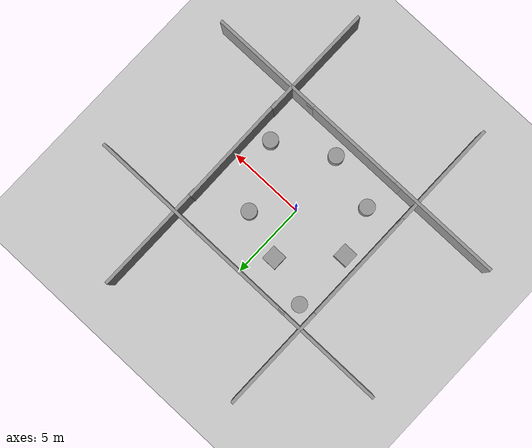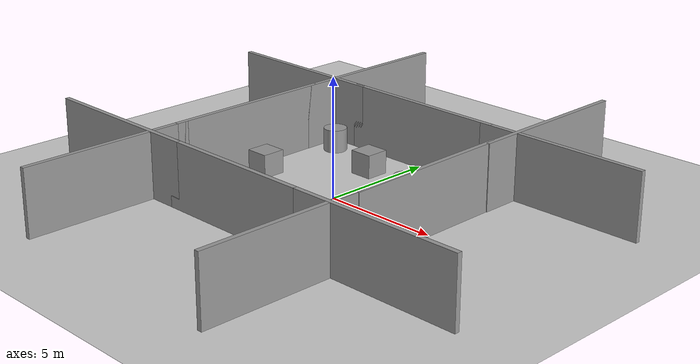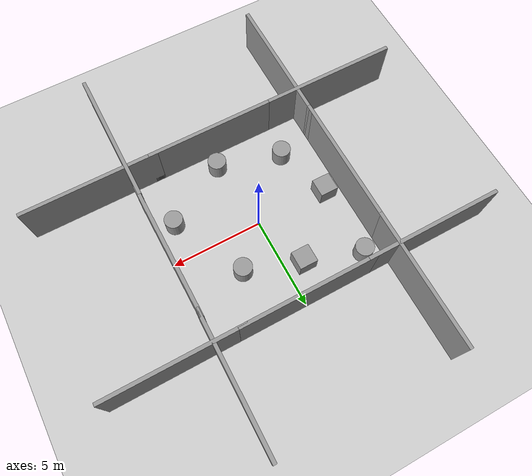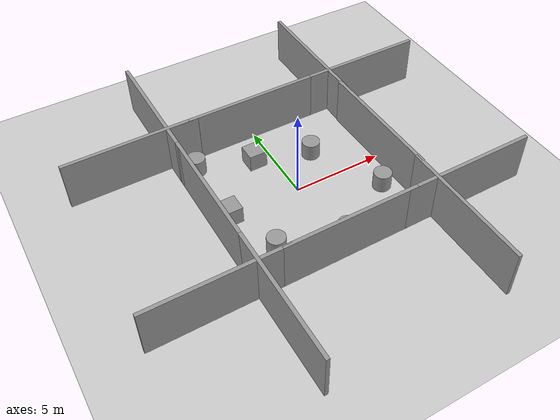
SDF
<sdf version="1.4">
 <world name="default">
  <light name="sun" type="directional">
   <pose>0 0 10 0 -0 0</pose>
   <diffuse>0.8 0.8 0.8 1</diffuse>
   <specular>0.2 0.2 0.2 1</specular>
   <attenuation>
    <range>1000</range>
    <constant>0.9</constant>
    <linear>0.01</linear>
    <quadratic>0.001</quadratic>
   </attenuation>
   <direction>-0.5 0.1 -0.9</direction>
  </light>
  <model name="ground_plane">
   <static>1</static>
   <link name="link">
    <collision name="collision">
     <geometry><plane><normal>0 0 1</normal><size>100 100</size></plane></geometry>
     <surface><friction><ode><mu>100</mu><mu2>50</mu2></ode></friction></surface>
    </collision>
    <visual name="visual">
     <cast_shadows>0</cast_shadows>
     <geometry><plane><normal>0 0 1</normal><size>100 100</size></plane></geometry>
     <material>
      <script><uri>file://media/materials/scripts/gazebo.material</uri><name>Gazebo/Grey</name></script>
     </material>
    </visual>
    <velocity_decay><linear>0</linear><angular>0</angular></velocity_decay>
   </link>
  </model>
  <physics type="ode">
   <max_step_size>0.001</max_step_size>
   <real_time_factor>1</real_time_factor>
   <real_time_update_rate>1000</real_time_update_rate>
   <gravity>0 0 -9.8</gravity>
  </physics>
  <scene><ambient>0.4 0.4 0.4 1</ambient><background>0.7 0.7 0.7 1</background><shadows>1</shadows></scene>
  <spherical_coordinates>
   <surface_model>EARTH_WGS84</surface_model>
   <latitude_deg>0</latitude_deg>
   <longitude_deg>0</longitude_deg>
   <elevation>0</elevation>
   <heading_deg>0</heading_deg>
  </spherical_coordinates>
  <model name="grey_wall">
   <static>1</static>
   <link name="link">
    <pose>0 0 1.4 0 -0 0</pose>
    <collision name="collision"><geometry><box><size>7.5 0.2 2.8</size></box></geometry></collision>
    <visual name="visual">
     <cast_shadows>0</cast_shadows>
     <geometry><box><size>7.5 0.2 2.8</size></box></geometry>
     <material>
      <script>
       <uri>model://grey_wall/materials/scripts</uri>
       <uri>model://grey_wall/materials/textures</uri>
       <name>vrc/grey_wall</name>
      </script>
     </material>
    </visual>
    <velocity_decay><linear>0</linear><angular>0</angular></velocity_decay>
   </link>
   <pose>0 5 0 0 -0 0</pose>
  </model>
  <model name="grey_wall_0">
   <static>1</static>
   <link name="link">
    <pose>0 0 1.4 0 -0 0</pose>
    <collision name="collision"><geometry><box><size>7.5 0.2 2.8</size></box></geometry></collision>
    <visual name="visual">
     <cast_shadows>0</cast_shadows>
     <geometry><box><size>7.5 0.2 2.8</size></box></geometry>
     <material>
      <script>
       <uri>model://grey_wall/materials/scripts</uri>
       <uri>model://grey_wall/materials/textures</uri>
       <name>vrc/grey_wall</name>
      </script>
     </material>
    </visual>
    <velocity_decay><linear>0</linear><angular>0</angular></velocity_decay>
   </link>
   <pose>0 -5 0 0 -0 0</pose>
  </model>
  <model name="grey_wall_2">
   <static>1</static>
   <link name="link">
    <pose>0 0 1.4 0 -0 0</pose>
    <collision name="collision"><geometry><box><size>7.5 0.2 2.8</size></box></geometry></collision>
    <visual name="visual">
     <cast_shadows>0</cast_shadows>
     <geometry><box><size>7.5 0.2 2.8</size></box></geometry>
     <material>
      <script>
       <uri>model://grey_wall/materials/scripts</uri>
       <uri>model://grey_wall/materials/textures</uri>
       <name>vrc/grey_wall</name>
      </script>
     </material>
    </visual>
    <velocity_decay><linear>0</linear><angular>0</angular></velocity_decay>
   </link>
   <pose>5 0 0 0 -0 1.58105</pose>
  </model>
  <model name="grey_wall_3">
   <static>1</static>
   <link name="link">
    <pose>0 0 1.4 0 -0 0</pose>
    <collision name="collision"><geometry><box><size>7.5 0.2 2.8</size></box></geometry></collision>
    <visual name="visual">
     <cast_shadows>0</cast_shadows>
     <geometry><box><size>7.5 0.2 2.8</size></box></geometry>
     <material>
      <script>
       <uri>model://grey_wall/materials/scripts</uri>
       <uri>model://grey_wall/materials/textures</uri>
       <name>vrc/grey_wall</name>
      </script>
     </material>
    </visual>
    <velocity_decay><linear>0</linear><angular>0</angular></velocity_decay>
   </link>
   <pose>-5 0 0 0 -0 1.5708</pose>
  </model>
  <model name="grey_wall_4">
   <static>1</static>
   <link name="link">
    <pose>0 0 1.4 0 -0 0</pose>
    <collision name="collision"><geometry><box><size>7.5 0.2 2.8</size></box></geometry></collision>
    <visual name="visual">
     <cast_shadows>0</cast_shadows>
     <geometry><box><size>7.5 0.2 2.8</size></box></geometry>
     <material>
      <script>
       <uri>model://grey_wall/materials/scripts</uri>
       <uri>model://grey_wall/materials/textures</uri>
       <name>vrc/grey_wall</name>
      </script>
     </material>
    </visual>
    <velocity_decay><linear>0</linear><angular>0</angular></velocity_decay>
   </link>
   <pose>7 5 0 0 -0 0</pose>
  </model>
  <model name="grey_wall_5">
   <static>1</static>
   <link name="link">
    <pose>0 0 1.4 0 -0 0</pose>
    <collision name="collision"><geometry><box><size>7.5 0.2 2.8</size></box></geometry></collision>
    <visual name="visual">
     <cast_shadows>0</cast_shadows>
     <geometry><box><size>7.5 0.2 2.8</size></box></geometry>
     <material>
      <script>
       <uri>model://grey_wall/materials/scripts</uri>
       <uri>model://grey_wall/materials/textures</uri>
       <name>vrc/grey_wall</name>
      </script>
     </material>
    </visual>
    <velocity_decay><linear>0</linear><angular>0</angular></velocity_decay>
   </link>
   <pose>7 -5 0 0 -0 0</pose>
  </model>
  <model name="grey_wall_6">
   <static>1</static>
   <link name="link">
    <pose>0 0 1.4 0 -0 0</pose>
    <collision name="collision"><geometry><box><size>7.5 0.2 2.8</size></box></geometry></collision>
    <visual name="visual">
     <cast_shadows>0</cast_shadows>
     <geometry><box><size>7.5 0.2 2.8</size></box></geometry>
     <material>
      <script>
       <uri>model://grey_wall/materials/scripts</uri>
       <uri>model://grey_wall/materials/textures</uri>
       <name>vrc/grey_wall</name>
      </script>
     </material>
    </visual>
    <velocity_decay><linear>0</linear><angular>0</angular></velocity_decay>
   </link>
   <pose>-7 5 0 0 -0 0</pose>
  </model>
  <model name="grey_wall_7">
   <static>1</static>
   <link name="link">
    <pose>0 0 1.4 0 -0 0</pose>
    <collision name="collision"><geometry><box><size>7.5 0.2 2.8</size></box></geometry></collision>
    <visual name="visual">
     <cast_shadows>0</cast_shadows>
     <geometry><box><size>7.5 0.2 2.8</size></box></geometry>
     <material>
      <script>
       <uri>model://grey_wall/materials/scripts</uri>
       <uri>model://grey_wall/materials/textures</uri>
       <name>vrc/grey_wall</name>
      </script>
     </material>
    </visual>
    <velocity_decay><linear>0</linear><angular>0</angular></velocity_decay>
   </link>
   <pose>-7 -5 0 0 -0 0</pose>
  </model>
  <model name="grey_wall_8">
   <static>1</static>
   <link name="link">
    <pose>0 0 1.4 0 -0 0</pose>
    <collision name="collision"><geometry><box><size>7.5 0.2 2.8</size></box></geometry></collision>
    <visual name="visual">
     <cast_shadows>0</cast_shadows>
     <geometry><box><size>7.5 0.2 2.8</size></box></geometry>
     <material>
      <script>
       <uri>model://grey_wall/materials/scripts</uri>
       <uri>model://grey_wall/materials/textures</uri>
       <name>vrc/grey_wall</name>
      </script>
     </material>
    </visual>
    <velocity_decay><linear>0</linear><angular>0</angular></velocity_decay>
   </link>
   <pose>5 -7 0 0 0 -1.5708</pose>
  </model>
  <model name="grey_wall_9">
   <static>1</static>
   <link name="link">
    <pose>0 0 1.4 0 -0 0</pose>
    <collision name="collision"><geometry><box><size>7.5 0.2 2.8</size></box></geometry></collision>
    <visual name="visual">
     <cast_shadows>0</cast_shadows>
     <geometry><box><size>7.5 0.2 2.8</size></box></geometry>
     <material>
      <script>
       <uri>model://grey_wall/materials/scripts</uri>
       <uri>model://grey_wall/materials/textures</uri>
       <name>vrc/grey_wall</name>
      </script>
     </material>
    </visual>
    <velocity_decay><linear>0</linear><angular>0</angular></velocity_decay>
   </link>
   <pose>5 7 0 0 0 -1.5708</pose>
  </model>
  <model name="grey_wall_10">
   <static>1</static>
   <link name="link">
    <pose>0 0 1.4 0 -0 0</pose>
    <collision name="collision"><geometry><box><size>7.5 0.2 2.8</size></box></geometry></collision>
    <visual name="visual">
     <cast_shadows>0</cast_shadows>
     <geometry><box><size>7.5 0.2 2.8</size></box></geometry>
     <material>
      <script>
       <uri>model://grey_wall/materials/scripts</uri>
       <uri>model://grey_wall/materials/textures</uri>
       <name>vrc/grey_wall</name>
      </script>
     </material>
    </visual>
    <velocity_decay><linear>0</linear><angular>0</angular></velocity_decay>
   </link>
   <pose>-5 7 0 0 0 -1.5708</pose>
  </model>
  <model name="grey_wall_11">
   <static>1</static>
   <link name="link">
    <pose>0 0 1.4 0 -0 0</pose>
    <collision name="collision"><geometry><box><size>7.5 0.2 2.8</size></box></geometry></collision>
    <visual name="visual">
     <cast_shadows>0</cast_shadows>
     <geometry><box><size>7.5 0.2 2.8</size></box></geometry>
     <material>
      <script>
       <uri>model://grey_wall/materials/scripts</uri>
       <uri>model://grey_wall/materials/textures</uri>
       <name>vrc/grey_wall</name>
      </script>
     </material>
    </visual>
    <velocity_decay><linear>0</linear><angular>0</angular></velocity_decay>
   </link>
   <pose>-5 -7 0 0 0 -1.5708</pose>
  </model>
  <model name="unit_cylinder_1">
   <pose>0.466675 -4 0.499992 -1e-06 -0 0</pose>
   <link name="link">
    <inertial>
     <mass>1</mass>
     <inertia><ixx>1</ixx><ixy>0</ixy><ixz>0</ixz><iyy>1</iyy><iyz>0</iyz><izz>1</izz></inertia>
    </inertial>
    <collision name="collision">
     <geometry><cylinder><radius>0.5</radius><length>1</length></cylinder></geometry>
    </collision>
    <visual name="visual">
     <geometry><cylinder><radius>0.5</radius><length>1</length></cylinder></geometry>
     <material>
      <script><uri>file://media/materials/scripts/gazebo.material</uri><name>Gazebo/Grey</name></script>
     </material>
    </visual>
    <velocity_decay><linear>0</linear><angular>0</angular></velocity_decay>
   </link>
   <static>0</static>
  </model>
  <model name="unit_cylinder_2">
   <pose>4 -2 0.499998 1e-06 -0 0</pose>
   <link name="link">
    <inertial>
     <mass>1</mass>
     <inertia><ixx>1</ixx><ixy>0</ixy><ixz>0</ixz><iyy>1</iyy><iyz>0</iyz><izz>1</izz></inertia>
    </inertial>
    <collision name="collision">
     <geometry><cylinder><radius>0.5</radius><length>1</length></cylinder></geometry>
    </collision>
    <visual name="visual">
     <geometry><cylinder><radius>0.5</radius><length>1</length></cylinder></geometry>
     <material>
      <script><uri>file://media/materials/scripts/gazebo.material</uri><name>Gazebo/Grey</name></script>
     </material>
    </visual>
    <velocity_decay><linear>0</linear><angular>0</angular></velocity_decay>
   </link>
   <static>0</static>
  </model>
  <model name="unit_cylinder_3">
   <pose>2 2 0.499992 -1e-06 -0 0</pose>
   <link name="link">
    <inertial>
     <mass>1</mass>
     <inertia><ixx>1</ixx><ixy>0</ixy><ixz>0</ixz><iyy>1</iyy><iyz>0</iyz><izz>1</izz></inertia>
    </inertial>
    <collision name="collision">
     <geometry><cylinder><radius>0.5</radius><length>1</length></cylinder></geometry>
    </collision>
    <visual name="visual">
     <geometry><cylinder><radius>0.5</radius><length>1</length></cylinder></geometry>
     <material>
      <script><uri>file://media/materials/scripts/gazebo.material</uri><name>Gazebo/Grey</name></script>
     </material>
    </visual>
    <velocity_decay><linear>0</linear><angular>0</angular></velocity_decay>
   </link>
   <static>0</static>
  </model>
  <model name="unit_cylinder_4">
   <pose>-4 4 0.499998 1e-06 -0 0</pose>
   <link name="link">
    <inertial>
     <mass>1</mass>
     <inertia><ixx>1</ixx><ixy>0</ixy><ixz>0</ixz><iyy>1</iyy><iyz>0</iyz><izz>1</izz></inertia>
    </inertial>
    <collision name="collision">
     <geometry><cylinder><radius>0.5</radius><length>1</length></cylinder></geometry>
    </collision>
    <visual name="visual">
     <geometry><cylinder><radius>0.5</radius><length>1</length></cylinder></geometry>
     <material>
      <script><uri>file://media/materials/scripts/gazebo.material</uri><name>Gazebo/Grey</name></script>
     </material>
    </visual>
    <velocity_decay><linear>0</linear><angular>0</angular></velocity_decay>
   </link>
   <static>0</static>
  </model>
  <model name="unit_box_1">
   <pose>-4 0 0.5 0 -0 0</pose>
   <link name="link">
    <inertial>
     <mass>1</mass>
     <inertia><ixx>1</ixx><ixy>0</ixy><ixz>0</ixz><iyy>1</iyy><iyz>0</iyz><izz>1</izz></inertia>
    </inertial>
    <collision name="collision"><geometry><box><size>1 1 1</size></box></geometry></collision>
    <visual name="visual">
     <geometry><box><size>1 1 1</size></box></geometry>
     <material>
      <script><uri>file://media/materials/scripts/gazebo.material</uri><name>Gazebo/Grey</name></script>
     </material>
    </visual>
    <velocity_decay><linear>0</linear><angular>0</angular></velocity_decay>
   </link>
   <static>0</static>
  </model>
  <model name="unit_box_2">
   <pose>-1 3 0.5 0 -0 0</pose>
   <link name="link">
    <inertial>
     <mass>1</mass>
     <inertia><ixx>1</ixx><ixy>0</ixy><ixz>0</ixz><iyy>1</iyy><iyz>0</iyz><izz>1</izz></inertia>
    </inertial>
    <collision name="collision"><geometry><box><size>1 1 1</size></box></geometry></collision>
    <visual name="visual">
     <geometry><box><size>1 1 1</size></box></geometry>
     <material>
      <script><uri>file://media/materials/scripts/gazebo.material</uri><name>Gazebo/Grey</name></script>
     </material>
    </visual>
    <velocity_decay><linear>0</linear><angular>0</angular></velocity_decay>
   </link>
   <static>0</static>
  </model>
  <model name="unit_cylinder_6">
   <pose>-3 -3 0.499992 0 -0 0</pose>
   <link name="link">
    <inertial>
     <mass>1</mass>
     <inertia><ixx>1</ixx><ixy>0</ixy><ixz>0</ixz><iyy>1</iyy><iyz>0</iyz><izz>1</izz></inertia>
    </inertial>
    <collision name="collision">
     <geometry><cylinder><radius>0.5</radius><length>1</length></cylinder></geometry>
    </collision>
    <visual name="visual">
     <geometry><cylinder><radius>0.5</radius><length>1</length></cylinder></geometry>
     <material>
      <script><uri>file://media/materials/scripts/gazebo.material</uri><name>Gazebo/Grey</name></script>
     </material>
    </visual>
    <velocity_decay><linear>0</linear><angular>0</angular></velocity_decay>
   </link>
   <static>0</static>
  </model>
 </world>
</sdf>
